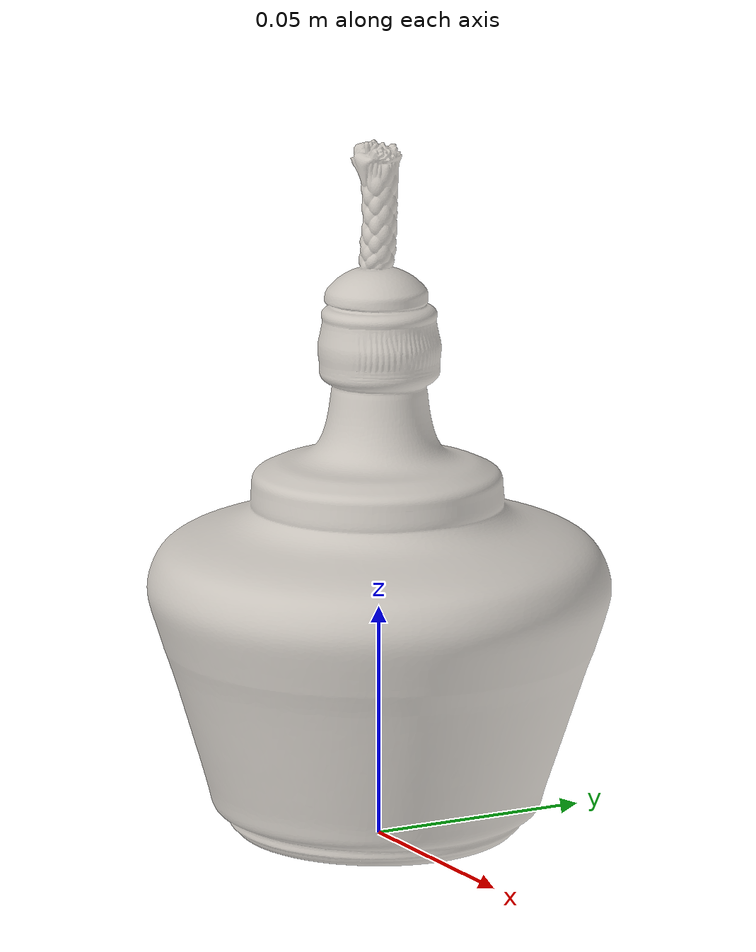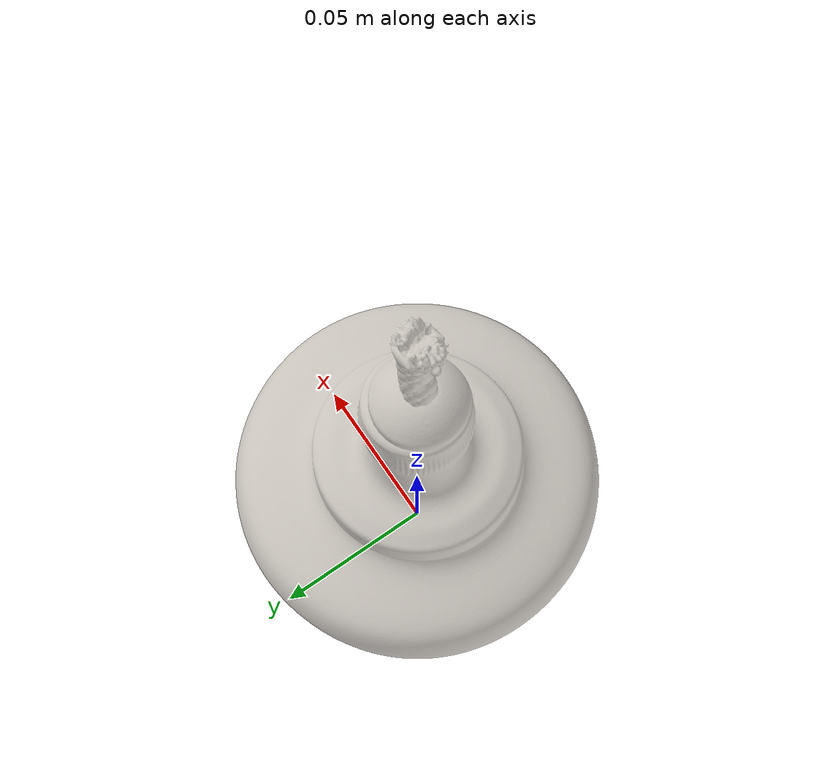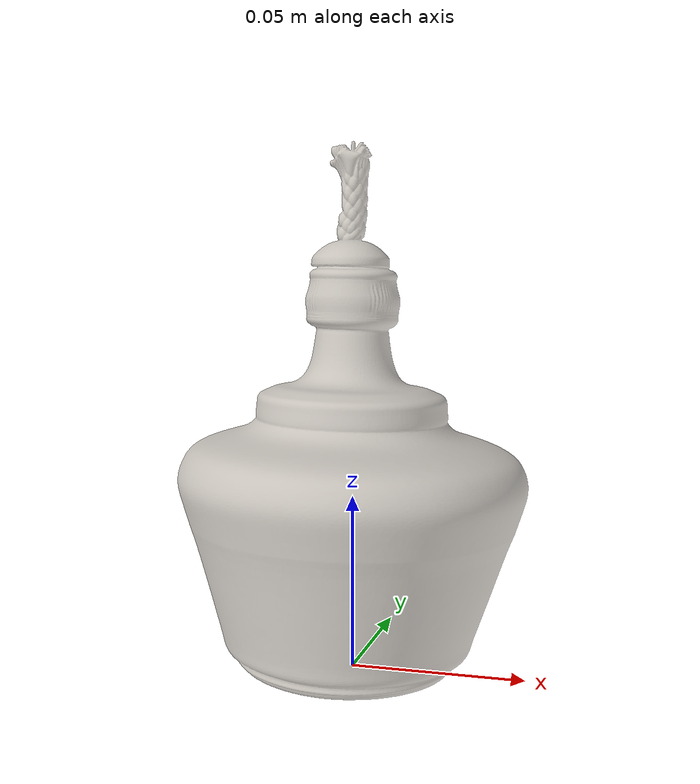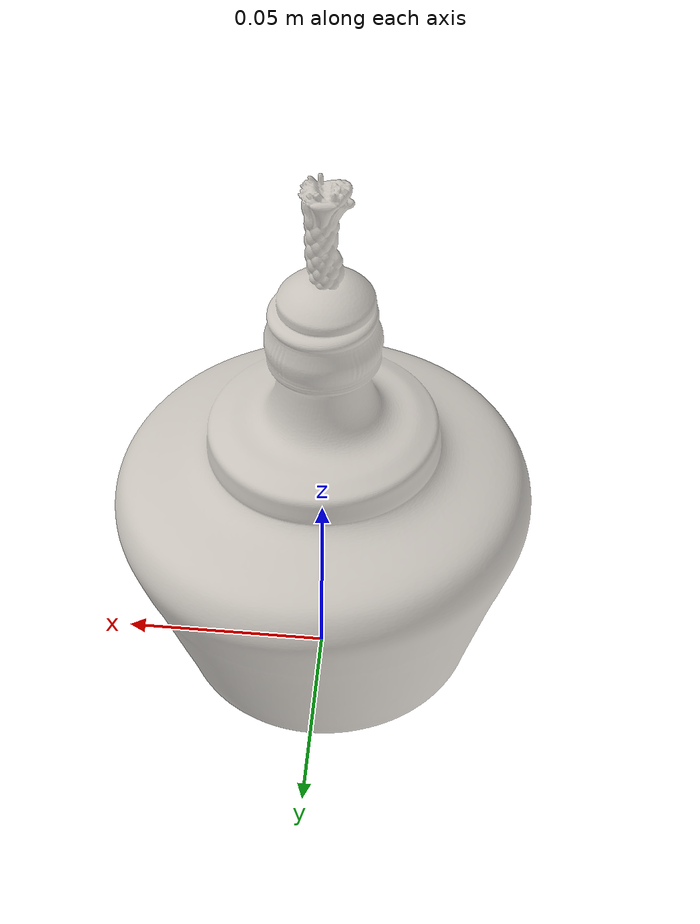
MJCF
<?xml version="1.0" ?>
<mujoco model="alcohol_lamp">
  <asset>
    <texture type="2d" name="Material.001" file="Material.001.png"/>
    <material name="Material.001" texture="Material.001" specular="0.4" shininess="0.001" rgba="1 1 1 0.7"/>
    <mesh file="alcohol_lamp.obj" scale="0.1782535176668012 0.1782535176668012 0.1782535176668012"/>
    <mesh file="alcohol_lamp/alcohol_lamp_collision_0.obj" scale="0.1782535176668012 0.1782535176668012 0.1782535176668012"/>
    <mesh file="alcohol_lamp/alcohol_lamp_collision_1.obj" scale="0.1782535176668012 0.1782535176668012 0.1782535176668012"/>
    <mesh file="alcohol_lamp/alcohol_lamp_collision_2.obj" scale="0.1782535176668012 0.1782535176668012 0.1782535176668012"/>
    <mesh file="alcohol_lamp/alcohol_lamp_collision_3.obj" scale="0.1782535176668012 0.1782535176668012 0.1782535176668012"/>
  </asset>
  <worldbody>
    <body name="alcohol_lamp">
      <inertial pos="0 0 0.075000" mass="0.02" diaginertia="0.0008 0.0008 0.0005"/>
      <geom material="Material.001" mesh="alcohol_lamp" class="visual"/>
      <geom mesh="alcohol_lamp_collision_0" class="collision"/>
      <geom mesh="alcohol_lamp_collision_1" class="collision"/>
      <geom mesh="alcohol_lamp_collision_2" class="collision"/>
      <geom mesh="alcohol_lamp_collision_3" class="collision"/>
      <!-- Flame: outer translucent orange ellipsoid (default: invisible) -->
      <geom name="flame_outer" type="ellipsoid"
            pos="0 0 0.158" size="0.012 0.012 0.030"
            rgba="1.0 0.45 0.05 0.0"
            class="visual"/>
      <!-- Flame: inner bright yellow core (default: invisible) -->
      <geom name="flame_inner" type="ellipsoid"
            pos="0 0 0.148" size="0.006 0.006 0.020"
            rgba="1.0 0.95 0.8 0.0"
            class="visual"/>
      <site class="grasppoint" pos="0.0000 0.0000 0.0900"/>
      <site class="grasppoint" pos="0.0000 0.0000 0.1200"/>
      <site class="grasppoint" pos="0.0000 0.0000 0.1425"/>
    </body>
  </worldbody>
  <compiler boundmass="0.015" boundinertia="1e-05" angle="radian"/>
  <default>
    <default class="visual">
      <geom group="2" type="mesh" contype="0" conaffinity="0" density="50"/>
    </default>
    <default class="collision">
      <geom group="3" type="mesh" density="50" friction="1.5 0.1 0.1" solimp="0.9 0.95 0.001" solref="0.02 1"/>
    </default>
    <default class="grasppoint">
      <site type="sphere" size="0.005" group="4" rgba="0 0 1 1"/>
    </default>
  </default>
</mujoco>
